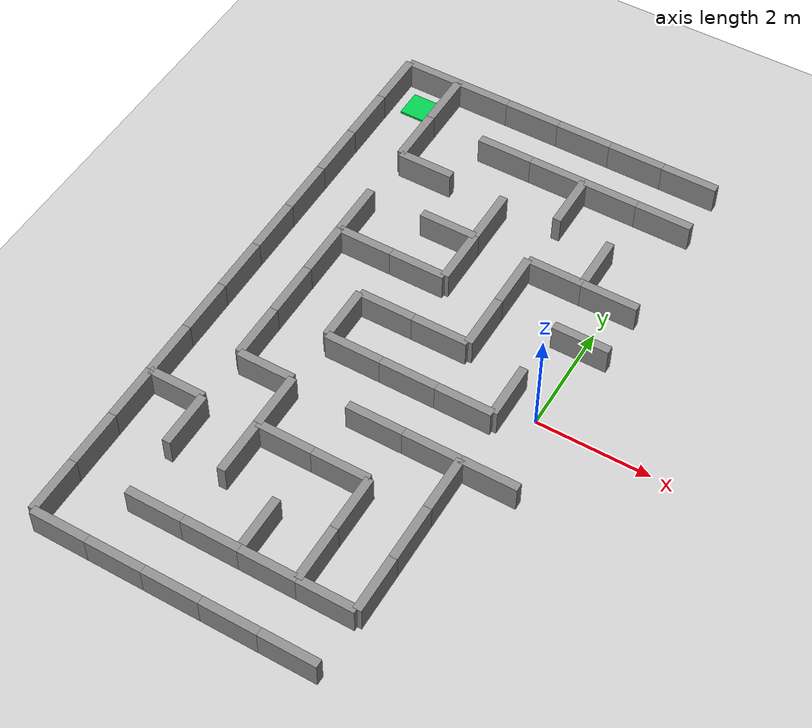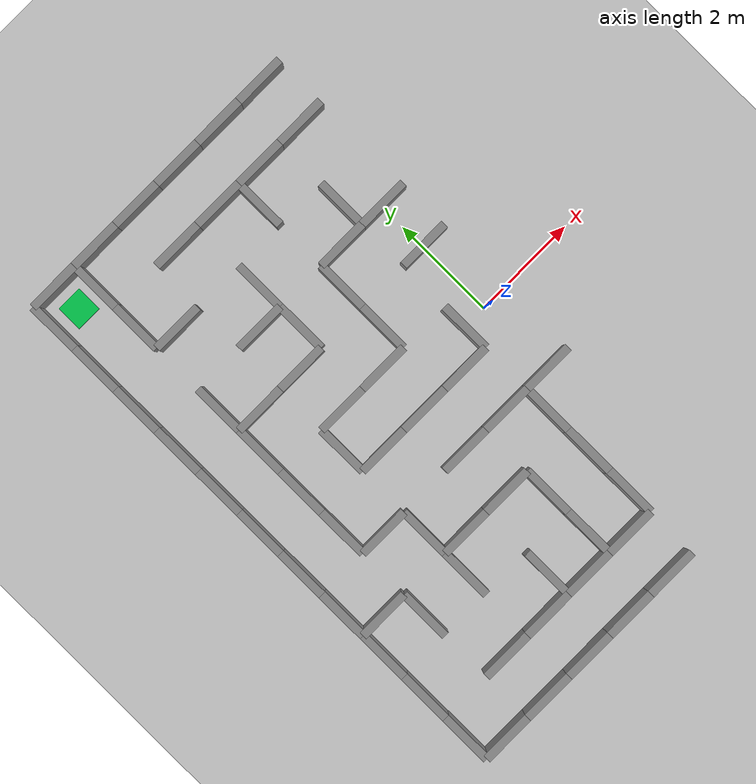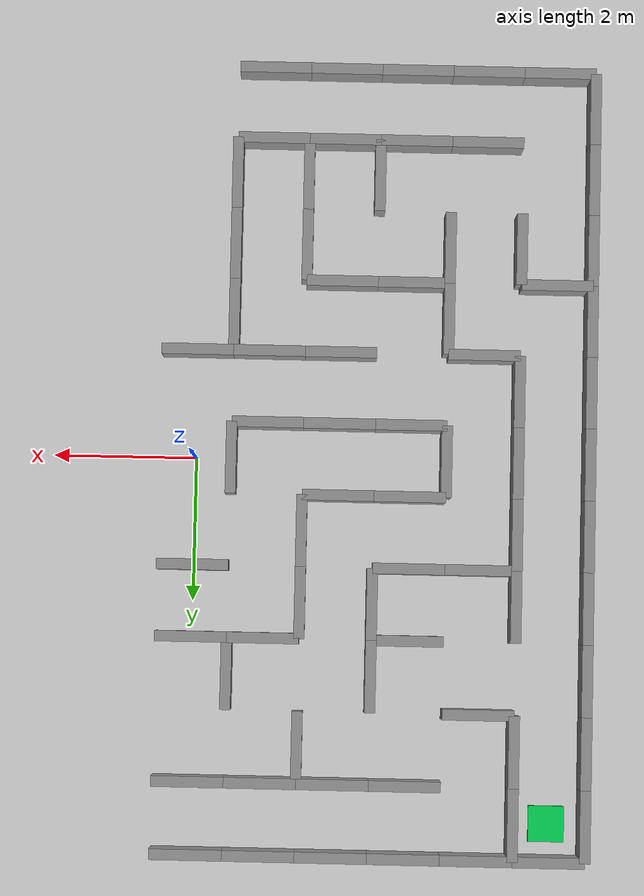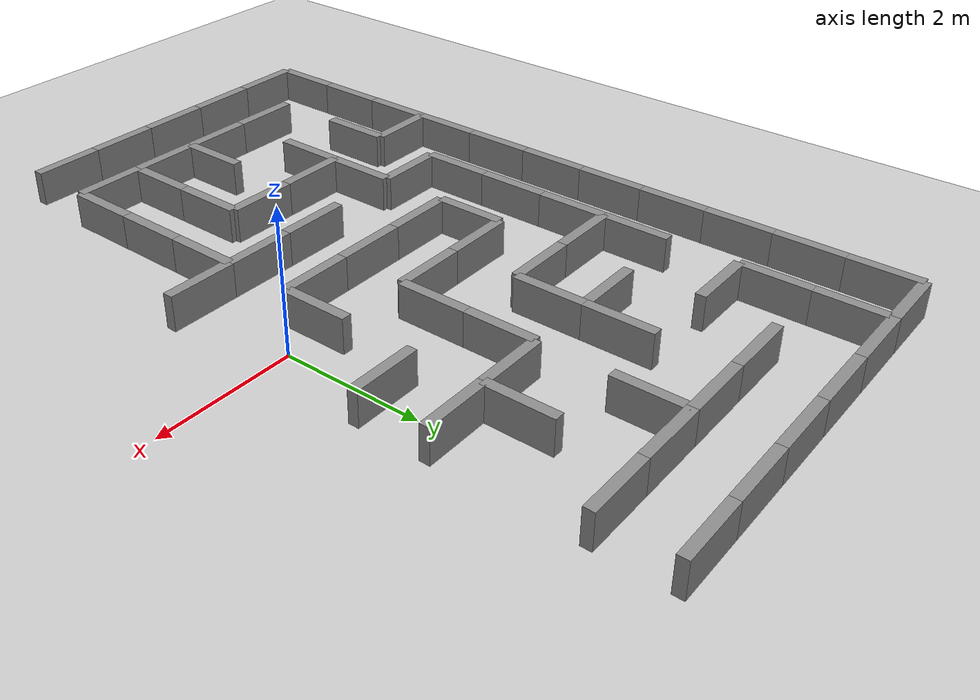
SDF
<sdf version="1.6">
 <world name="maze_world">
  <include><uri>model://ground_plane</uri></include>
  <include><uri>model://sun</uri></include>
  <model name="hw_0_0">
   <static>true</static>
   <pose>-5.0000 5.5000 0.2500 0 0 0.0000</pose>
   <link name="link">
    <collision name="col">
     <geometry><box><size>1.0000 0.15 0.5</size></box></geometry>
     <surface><friction><ode><mu>0.8</mu><mu2>0.8</mu2></ode></friction></surface>
    </collision>
    <visual name="vis">
     <geometry><box><size>1.0000 0.15 0.5</size></box></geometry>
     <material><ambient>0.55 0.55 0.55 1</ambient><diffuse>0.55 0.55 0.55 1</diffuse></material>
    </visual>
   </link>
  </model>
  <model name="hw_0_1">
   <static>true</static>
   <pose>-4.0000 5.5000 0.2500 0 0 0.0000</pose>
   <link name="link">
    <collision name="col">
     <geometry><box><size>1.0000 0.15 0.5</size></box></geometry>
     <surface><friction><ode><mu>0.8</mu><mu2>0.8</mu2></ode></friction></surface>
    </collision>
    <visual name="vis">
     <geometry><box><size>1.0000 0.15 0.5</size></box></geometry>
     <material><ambient>0.55 0.55 0.55 1</ambient><diffuse>0.55 0.55 0.55 1</diffuse></material>
    </visual>
   </link>
  </model>
  <model name="hw_0_2">
   <static>true</static>
   <pose>-3.0000 5.5000 0.2500 0 0 0.0000</pose>
   <link name="link">
    <collision name="col">
     <geometry><box><size>1.0000 0.15 0.5</size></box></geometry>
     <surface><friction><ode><mu>0.8</mu><mu2>0.8</mu2></ode></friction></surface>
    </collision>
    <visual name="vis">
     <geometry><box><size>1.0000 0.15 0.5</size></box></geometry>
     <material><ambient>0.55 0.55 0.55 1</ambient><diffuse>0.55 0.55 0.55 1</diffuse></material>
    </visual>
   </link>
  </model>
  <model name="hw_0_3">
   <static>true</static>
   <pose>-2.0000 5.5000 0.2500 0 0 0.0000</pose>
   <link name="link">
    <collision name="col">
     <geometry><box><size>1.0000 0.15 0.5</size></box></geometry>
     <surface><friction><ode><mu>0.8</mu><mu2>0.8</mu2></ode></friction></surface>
    </collision>
    <visual name="vis">
     <geometry><box><size>1.0000 0.15 0.5</size></box></geometry>
     <material><ambient>0.55 0.55 0.55 1</ambient><diffuse>0.55 0.55 0.55 1</diffuse></material>
    </visual>
   </link>
  </model>
  <model name="hw_0_4">
   <static>true</static>
   <pose>-1.0000 5.5000 0.2500 0 0 0.0000</pose>
   <link name="link">
    <collision name="col">
     <geometry><box><size>1.0000 0.15 0.5</size></box></geometry>
     <surface><friction><ode><mu>0.8</mu><mu2>0.8</mu2></ode></friction></surface>
    </collision>
    <visual name="vis">
     <geometry><box><size>1.0000 0.15 0.5</size></box></geometry>
     <material><ambient>0.55 0.55 0.55 1</ambient><diffuse>0.55 0.55 0.55 1</diffuse></material>
    </visual>
   </link>
  </model>
  <model name="hw_0_5">
   <static>true</static>
   <pose>0.0000 5.5000 0.2500 0 0 0.0000</pose>
   <link name="link">
    <collision name="col">
     <geometry><box><size>1.0000 0.15 0.5</size></box></geometry>
     <surface><friction><ode><mu>0.8</mu><mu2>0.8</mu2></ode></friction></surface>
    </collision>
    <visual name="vis">
     <geometry><box><size>1.0000 0.15 0.5</size></box></geometry>
     <material><ambient>0.55 0.55 0.55 1</ambient><diffuse>0.55 0.55 0.55 1</diffuse></material>
    </visual>
   </link>
  </model>
  <model name="hw_1_2">
   <static>true</static>
   <pose>-3.0000 4.5000 0.2500 0 0 0.0000</pose>
   <link name="link">
    <collision name="col">
     <geometry><box><size>1.0000 0.15 0.5</size></box></geometry>
     <surface><friction><ode><mu>0.8</mu><mu2>0.8</mu2></ode></friction></surface>
    </collision>
    <visual name="vis">
     <geometry><box><size>1.0000 0.15 0.5</size></box></geometry>
     <material><ambient>0.55 0.55 0.55 1</ambient><diffuse>0.55 0.55 0.55 1</diffuse></material>
    </visual>
   </link>
  </model>
  <model name="hw_1_3">
   <static>true</static>
   <pose>-2.0000 4.5000 0.2500 0 0 0.0000</pose>
   <link name="link">
    <collision name="col">
     <geometry><box><size>1.0000 0.15 0.5</size></box></geometry>
     <surface><friction><ode><mu>0.8</mu><mu2>0.8</mu2></ode></friction></surface>
    </collision>
    <visual name="vis">
     <geometry><box><size>1.0000 0.15 0.5</size></box></geometry>
     <material><ambient>0.55 0.55 0.55 1</ambient><diffuse>0.55 0.55 0.55 1</diffuse></material>
    </visual>
   </link>
  </model>
  <model name="hw_1_4">
   <static>true</static>
   <pose>-1.0000 4.5000 0.2500 0 0 0.0000</pose>
   <link name="link">
    <collision name="col">
     <geometry><box><size>1.0000 0.15 0.5</size></box></geometry>
     <surface><friction><ode><mu>0.8</mu><mu2>0.8</mu2></ode></friction></surface>
    </collision>
    <visual name="vis">
     <geometry><box><size>1.0000 0.15 0.5</size></box></geometry>
     <material><ambient>0.55 0.55 0.55 1</ambient><diffuse>0.55 0.55 0.55 1</diffuse></material>
    </visual>
   </link>
  </model>
  <model name="hw_1_5">
   <static>true</static>
   <pose>0.0000 4.5000 0.2500 0 0 0.0000</pose>
   <link name="link">
    <collision name="col">
     <geometry><box><size>1.0000 0.15 0.5</size></box></geometry>
     <surface><friction><ode><mu>0.8</mu><mu2>0.8</mu2></ode></friction></surface>
    </collision>
    <visual name="vis">
     <geometry><box><size>1.0000 0.15 0.5</size></box></geometry>
     <material><ambient>0.55 0.55 0.55 1</ambient><diffuse>0.55 0.55 0.55 1</diffuse></material>
    </visual>
   </link>
  </model>
  <model name="hw_2_1">
   <static>true</static>
   <pose>-4.0000 3.5000 0.2500 0 0 0.0000</pose>
   <link name="link">
    <collision name="col">
     <geometry><box><size>1.0000 0.15 0.5</size></box></geometry>
     <surface><friction><ode><mu>0.8</mu><mu2>0.8</mu2></ode></friction></surface>
    </collision>
    <visual name="vis">
     <geometry><box><size>1.0000 0.15 0.5</size></box></geometry>
     <material><ambient>0.55 0.55 0.55 1</ambient><diffuse>0.55 0.55 0.55 1</diffuse></material>
    </visual>
   </link>
  </model>
  <model name="hw_3_2">
   <static>true</static>
   <pose>-3.0000 2.5000 0.2500 0 0 0.0000</pose>
   <link name="link">
    <collision name="col">
     <geometry><box><size>1.0000 0.15 0.5</size></box></geometry>
     <surface><friction><ode><mu>0.8</mu><mu2>0.8</mu2></ode></friction></surface>
    </collision>
    <visual name="vis">
     <geometry><box><size>1.0000 0.15 0.5</size></box></geometry>
     <material><ambient>0.55 0.55 0.55 1</ambient><diffuse>0.55 0.55 0.55 1</diffuse></material>
    </visual>
   </link>
  </model>
  <model name="hw_3_4">
   <static>true</static>
   <pose>-1.0000 2.5000 0.2500 0 0 0.0000</pose>
   <link name="link">
    <collision name="col">
     <geometry><box><size>1.0000 0.15 0.5</size></box></geometry>
     <surface><friction><ode><mu>0.8</mu><mu2>0.8</mu2></ode></friction></surface>
    </collision>
    <visual name="vis">
     <geometry><box><size>1.0000 0.15 0.5</size></box></geometry>
     <material><ambient>0.55 0.55 0.55 1</ambient><diffuse>0.55 0.55 0.55 1</diffuse></material>
    </visual>
   </link>
  </model>
  <model name="hw_3_5">
   <static>true</static>
   <pose>0.0000 2.5000 0.2500 0 0 0.0000</pose>
   <link name="link">
    <collision name="col">
     <geometry><box><size>1.0000 0.15 0.5</size></box></geometry>
     <surface><friction><ode><mu>0.8</mu><mu2>0.8</mu2></ode></friction></surface>
    </collision>
    <visual name="vis">
     <geometry><box><size>1.0000 0.15 0.5</size></box></geometry>
     <material><ambient>0.55 0.55 0.55 1</ambient><diffuse>0.55 0.55 0.55 1</diffuse></material>
    </visual>
   </link>
  </model>
  <model name="hw_4_1">
   <static>true</static>
   <pose>-4.0000 1.5000 0.2500 0 0 0.0000</pose>
   <link name="link">
    <collision name="col">
     <geometry><box><size>1.0000 0.15 0.5</size></box></geometry>
     <surface><friction><ode><mu>0.8</mu><mu2>0.8</mu2></ode></friction></surface>
    </collision>
    <visual name="vis">
     <geometry><box><size>1.0000 0.15 0.5</size></box></geometry>
     <material><ambient>0.55 0.55 0.55 1</ambient><diffuse>0.55 0.55 0.55 1</diffuse></material>
    </visual>
   </link>
  </model>
  <model name="hw_4_2">
   <static>true</static>
   <pose>-3.0000 1.5000 0.2500 0 0 0.0000</pose>
   <link name="link">
    <collision name="col">
     <geometry><box><size>1.0000 0.15 0.5</size></box></geometry>
     <surface><friction><ode><mu>0.8</mu><mu2>0.8</mu2></ode></friction></surface>
    </collision>
    <visual name="vis">
     <geometry><box><size>1.0000 0.15 0.5</size></box></geometry>
     <material><ambient>0.55 0.55 0.55 1</ambient><diffuse>0.55 0.55 0.55 1</diffuse></material>
    </visual>
   </link>
  </model>
  <model name="hw_4_5">
   <static>true</static>
   <pose>0.0000 1.5000 0.2500 0 0 0.0000</pose>
   <link name="link">
    <collision name="col">
     <geometry><box><size>1.0000 0.15 0.5</size></box></geometry>
     <surface><friction><ode><mu>0.8</mu><mu2>0.8</mu2></ode></friction></surface>
    </collision>
    <visual name="vis">
     <geometry><box><size>1.0000 0.15 0.5</size></box></geometry>
     <material><ambient>0.55 0.55 0.55 1</ambient><diffuse>0.55 0.55 0.55 1</diffuse></material>
    </visual>
   </link>
  </model>
  <model name="hw_5_2">
   <static>true</static>
   <pose>-3.0000 0.5000 0.2500 0 0 0.0000</pose>
   <link name="link">
    <collision name="col">
     <geometry><box><size>1.0000 0.15 0.5</size></box></geometry>
     <surface><friction><ode><mu>0.8</mu><mu2>0.8</mu2></ode></friction></surface>
    </collision>
    <visual name="vis">
     <geometry><box><size>1.0000 0.15 0.5</size></box></geometry>
     <material><ambient>0.55 0.55 0.55 1</ambient><diffuse>0.55 0.55 0.55 1</diffuse></material>
    </visual>
   </link>
  </model>
  <model name="hw_5_3">
   <static>true</static>
   <pose>-2.0000 0.5000 0.2500 0 0 0.0000</pose>
   <link name="link">
    <collision name="col">
     <geometry><box><size>1.0000 0.15 0.5</size></box></geometry>
     <surface><friction><ode><mu>0.8</mu><mu2>0.8</mu2></ode></friction></surface>
    </collision>
    <visual name="vis">
     <geometry><box><size>1.0000 0.15 0.5</size></box></geometry>
     <material><ambient>0.55 0.55 0.55 1</ambient><diffuse>0.55 0.55 0.55 1</diffuse></material>
    </visual>
   </link>
  </model>
  <model name="hw_6_2">
   <static>true</static>
   <pose>-3.0000 -0.5000 0.2500 0 0 0.0000</pose>
   <link name="link">
    <collision name="col">
     <geometry><box><size>1.0000 0.15 0.5</size></box></geometry>
     <surface><friction><ode><mu>0.8</mu><mu2>0.8</mu2></ode></friction></surface>
    </collision>
    <visual name="vis">
     <geometry><box><size>1.0000 0.15 0.5</size></box></geometry>
     <material><ambient>0.55 0.55 0.55 1</ambient><diffuse>0.55 0.55 0.55 1</diffuse></material>
    </visual>
   </link>
  </model>
  <model name="hw_6_3">
   <static>true</static>
   <pose>-2.0000 -0.5000 0.2500 0 0 0.0000</pose>
   <link name="link">
    <collision name="col">
     <geometry><box><size>1.0000 0.15 0.5</size></box></geometry>
     <surface><friction><ode><mu>0.8</mu><mu2>0.8</mu2></ode></friction></surface>
    </collision>
    <visual name="vis">
     <geometry><box><size>1.0000 0.15 0.5</size></box></geometry>
     <material><ambient>0.55 0.55 0.55 1</ambient><diffuse>0.55 0.55 0.55 1</diffuse></material>
    </visual>
   </link>
  </model>
  <model name="hw_6_4">
   <static>true</static>
   <pose>-1.0000 -0.5000 0.2500 0 0 0.0000</pose>
   <link name="link">
    <collision name="col">
     <geometry><box><size>1.0000 0.15 0.5</size></box></geometry>
     <surface><friction><ode><mu>0.8</mu><mu2>0.8</mu2></ode></friction></surface>
    </collision>
    <visual name="vis">
     <geometry><box><size>1.0000 0.15 0.5</size></box></geometry>
     <material><ambient>0.55 0.55 0.55 1</ambient><diffuse>0.55 0.55 0.55 1</diffuse></material>
    </visual>
   </link>
  </model>
  <model name="hw_7_1">
   <static>true</static>
   <pose>-4.0000 -1.5000 0.2500 0 0 0.0000</pose>
   <link name="link">
    <collision name="col">
     <geometry><box><size>1.0000 0.15 0.5</size></box></geometry>
     <surface><friction><ode><mu>0.8</mu><mu2>0.8</mu2></ode></friction></surface>
    </collision>
    <visual name="vis">
     <geometry><box><size>1.0000 0.15 0.5</size></box></geometry>
     <material><ambient>0.55 0.55 0.55 1</ambient><diffuse>0.55 0.55 0.55 1</diffuse></material>
    </visual>
   </link>
  </model>
  <model name="hw_7_3">
   <static>true</static>
   <pose>-2.0000 -1.5000 0.2500 0 0 0.0000</pose>
   <link name="link">
    <collision name="col">
     <geometry><box><size>1.0000 0.15 0.5</size></box></geometry>
     <surface><friction><ode><mu>0.8</mu><mu2>0.8</mu2></ode></friction></surface>
    </collision>
    <visual name="vis">
     <geometry><box><size>1.0000 0.15 0.5</size></box></geometry>
     <material><ambient>0.55 0.55 0.55 1</ambient><diffuse>0.55 0.55 0.55 1</diffuse></material>
    </visual>
   </link>
  </model>
  <model name="hw_7_4">
   <static>true</static>
   <pose>-1.0000 -1.5000 0.2500 0 0 0.0000</pose>
   <link name="link">
    <collision name="col">
     <geometry><box><size>1.0000 0.15 0.5</size></box></geometry>
     <surface><friction><ode><mu>0.8</mu><mu2>0.8</mu2></ode></friction></surface>
    </collision>
    <visual name="vis">
     <geometry><box><size>1.0000 0.15 0.5</size></box></geometry>
     <material><ambient>0.55 0.55 0.55 1</ambient><diffuse>0.55 0.55 0.55 1</diffuse></material>
    </visual>
   </link>
  </model>
  <model name="hw_7_5">
   <static>true</static>
   <pose>0.0000 -1.5000 0.2500 0 0 0.0000</pose>
   <link name="link">
    <collision name="col">
     <geometry><box><size>1.0000 0.15 0.5</size></box></geometry>
     <surface><friction><ode><mu>0.8</mu><mu2>0.8</mu2></ode></friction></surface>
    </collision>
    <visual name="vis">
     <geometry><box><size>1.0000 0.15 0.5</size></box></geometry>
     <material><ambient>0.55 0.55 0.55 1</ambient><diffuse>0.55 0.55 0.55 1</diffuse></material>
    </visual>
   </link>
  </model>
  <model name="hw_8_0">
   <static>true</static>
   <pose>-5.0000 -2.5000 0.2500 0 0 0.0000</pose>
   <link name="link">
    <collision name="col">
     <geometry><box><size>1.0000 0.15 0.5</size></box></geometry>
     <surface><friction><ode><mu>0.8</mu><mu2>0.8</mu2></ode></friction></surface>
    </collision>
    <visual name="vis">
     <geometry><box><size>1.0000 0.15 0.5</size></box></geometry>
     <material><ambient>0.55 0.55 0.55 1</ambient><diffuse>0.55 0.55 0.55 1</diffuse></material>
    </visual>
   </link>
  </model>
  <model name="hw_8_2">
   <static>true</static>
   <pose>-3.0000 -2.5000 0.2500 0 0 0.0000</pose>
   <link name="link">
    <collision name="col">
     <geometry><box><size>1.0000 0.15 0.5</size></box></geometry>
     <surface><friction><ode><mu>0.8</mu><mu2>0.8</mu2></ode></friction></surface>
    </collision>
    <visual name="vis">
     <geometry><box><size>1.0000 0.15 0.5</size></box></geometry>
     <material><ambient>0.55 0.55 0.55 1</ambient><diffuse>0.55 0.55 0.55 1</diffuse></material>
    </visual>
   </link>
  </model>
  <model name="hw_8_3">
   <static>true</static>
   <pose>-2.0000 -2.5000 0.2500 0 0 0.0000</pose>
   <link name="link">
    <collision name="col">
     <geometry><box><size>1.0000 0.15 0.5</size></box></geometry>
     <surface><friction><ode><mu>0.8</mu><mu2>0.8</mu2></ode></friction></surface>
    </collision>
    <visual name="vis">
     <geometry><box><size>1.0000 0.15 0.5</size></box></geometry>
     <material><ambient>0.55 0.55 0.55 1</ambient><diffuse>0.55 0.55 0.55 1</diffuse></material>
    </visual>
   </link>
  </model>
  <model name="hw_10_1">
   <static>true</static>
   <pose>-4.0000 -4.5000 0.2500 0 0 0.0000</pose>
   <link name="link">
    <collision name="col">
     <geometry><box><size>1.0000 0.15 0.5</size></box></geometry>
     <surface><friction><ode><mu>0.8</mu><mu2>0.8</mu2></ode></friction></surface>
    </collision>
    <visual name="vis">
     <geometry><box><size>1.0000 0.15 0.5</size></box></geometry>
     <material><ambient>0.55 0.55 0.55 1</ambient><diffuse>0.55 0.55 0.55 1</diffuse></material>
    </visual>
   </link>
  </model>
  <model name="hw_10_2">
   <static>true</static>
   <pose>-3.0000 -4.5000 0.2500 0 0 0.0000</pose>
   <link name="link">
    <collision name="col">
     <geometry><box><size>1.0000 0.15 0.5</size></box></geometry>
     <surface><friction><ode><mu>0.8</mu><mu2>0.8</mu2></ode></friction></surface>
    </collision>
    <visual name="vis">
     <geometry><box><size>1.0000 0.15 0.5</size></box></geometry>
     <material><ambient>0.55 0.55 0.55 1</ambient><diffuse>0.55 0.55 0.55 1</diffuse></material>
    </visual>
   </link>
  </model>
  <model name="hw_10_3">
   <static>true</static>
   <pose>-2.0000 -4.5000 0.2500 0 0 0.0000</pose>
   <link name="link">
    <collision name="col">
     <geometry><box><size>1.0000 0.15 0.5</size></box></geometry>
     <surface><friction><ode><mu>0.8</mu><mu2>0.8</mu2></ode></friction></surface>
    </collision>
    <visual name="vis">
     <geometry><box><size>1.0000 0.15 0.5</size></box></geometry>
     <material><ambient>0.55 0.55 0.55 1</ambient><diffuse>0.55 0.55 0.55 1</diffuse></material>
    </visual>
   </link>
  </model>
  <model name="hw_10_4">
   <static>true</static>
   <pose>-1.0000 -4.5000 0.2500 0 0 0.0000</pose>
   <link name="link">
    <collision name="col">
     <geometry><box><size>1.0000 0.15 0.5</size></box></geometry>
     <surface><friction><ode><mu>0.8</mu><mu2>0.8</mu2></ode></friction></surface>
    </collision>
    <visual name="vis">
     <geometry><box><size>1.0000 0.15 0.5</size></box></geometry>
     <material><ambient>0.55 0.55 0.55 1</ambient><diffuse>0.55 0.55 0.55 1</diffuse></material>
    </visual>
   </link>
  </model>
  <model name="hw_11_0">
   <static>true</static>
   <pose>-5.0000 -5.5000 0.2500 0 0 0.0000</pose>
   <link name="link">
    <collision name="col">
     <geometry><box><size>1.0000 0.15 0.5</size></box></geometry>
     <surface><friction><ode><mu>0.8</mu><mu2>0.8</mu2></ode></friction></surface>
    </collision>
    <visual name="vis">
     <geometry><box><size>1.0000 0.15 0.5</size></box></geometry>
     <material><ambient>0.55 0.55 0.55 1</ambient><diffuse>0.55 0.55 0.55 1</diffuse></material>
    </visual>
   </link>
  </model>
  <model name="hw_11_1">
   <static>true</static>
   <pose>-4.0000 -5.5000 0.2500 0 0 0.0000</pose>
   <link name="link">
    <collision name="col">
     <geometry><box><size>1.0000 0.15 0.5</size></box></geometry>
     <surface><friction><ode><mu>0.8</mu><mu2>0.8</mu2></ode></friction></surface>
    </collision>
    <visual name="vis">
     <geometry><box><size>1.0000 0.15 0.5</size></box></geometry>
     <material><ambient>0.55 0.55 0.55 1</ambient><diffuse>0.55 0.55 0.55 1</diffuse></material>
    </visual>
   </link>
  </model>
  <model name="hw_11_2">
   <static>true</static>
   <pose>-3.0000 -5.5000 0.2500 0 0 0.0000</pose>
   <link name="link">
    <collision name="col">
     <geometry><box><size>1.0000 0.15 0.5</size></box></geometry>
     <surface><friction><ode><mu>0.8</mu><mu2>0.8</mu2></ode></friction></surface>
    </collision>
    <visual name="vis">
     <geometry><box><size>1.0000 0.15 0.5</size></box></geometry>
     <material><ambient>0.55 0.55 0.55 1</ambient><diffuse>0.55 0.55 0.55 1</diffuse></material>
    </visual>
   </link>
  </model>
  <model name="hw_11_3">
   <static>true</static>
   <pose>-2.0000 -5.5000 0.2500 0 0 0.0000</pose>
   <link name="link">
    <collision name="col">
     <geometry><box><size>1.0000 0.15 0.5</size></box></geometry>
     <surface><friction><ode><mu>0.8</mu><mu2>0.8</mu2></ode></friction></surface>
    </collision>
    <visual name="vis">
     <geometry><box><size>1.0000 0.15 0.5</size></box></geometry>
     <material><ambient>0.55 0.55 0.55 1</ambient><diffuse>0.55 0.55 0.55 1</diffuse></material>
    </visual>
   </link>
  </model>
  <model name="hw_11_4">
   <static>true</static>
   <pose>-1.0000 -5.5000 0.2500 0 0 0.0000</pose>
   <link name="link">
    <collision name="col">
     <geometry><box><size>1.0000 0.15 0.5</size></box></geometry>
     <surface><friction><ode><mu>0.8</mu><mu2>0.8</mu2></ode></friction></surface>
    </collision>
    <visual name="vis">
     <geometry><box><size>1.0000 0.15 0.5</size></box></geometry>
     <material><ambient>0.55 0.55 0.55 1</ambient><diffuse>0.55 0.55 0.55 1</diffuse></material>
    </visual>
   </link>
  </model>
  <model name="vw_0_0">
   <static>true</static>
   <pose>-5.5000 5.0000 0.2500 0 0 1.5708</pose>
   <link name="link">
    <collision name="col">
     <geometry><box><size>1.0000 0.15 0.5</size></box></geometry>
     <surface><friction><ode><mu>0.8</mu><mu2>0.8</mu2></ode></friction></surface>
    </collision>
    <visual name="vis">
     <geometry><box><size>1.0000 0.15 0.5</size></box></geometry>
     <material><ambient>0.55 0.55 0.55 1</ambient><diffuse>0.55 0.55 0.55 1</diffuse></material>
    </visual>
   </link>
  </model>
  <model name="vw_0_1">
   <static>true</static>
   <pose>-5.5000 4.0000 0.2500 0 0 1.5708</pose>
   <link name="link">
    <collision name="col">
     <geometry><box><size>1.0000 0.15 0.5</size></box></geometry>
     <surface><friction><ode><mu>0.8</mu><mu2>0.8</mu2></ode></friction></surface>
    </collision>
    <visual name="vis">
     <geometry><box><size>1.0000 0.15 0.5</size></box></geometry>
     <material><ambient>0.55 0.55 0.55 1</ambient><diffuse>0.55 0.55 0.55 1</diffuse></material>
    </visual>
   </link>
  </model>
  <model name="vw_0_2">
   <static>true</static>
   <pose>-5.5000 3.0000 0.2500 0 0 1.5708</pose>
   <link name="link">
    <collision name="col">
     <geometry><box><size>1.0000 0.15 0.5</size></box></geometry>
     <surface><friction><ode><mu>0.8</mu><mu2>0.8</mu2></ode></friction></surface>
    </collision>
    <visual name="vis">
     <geometry><box><size>1.0000 0.15 0.5</size></box></geometry>
     <material><ambient>0.55 0.55 0.55 1</ambient><diffuse>0.55 0.55 0.55 1</diffuse></material>
    </visual>
   </link>
  </model>
  <model name="vw_0_3">
   <static>true</static>
   <pose>-5.5000 2.0000 0.2500 0 0 1.5708</pose>
   <link name="link">
    <collision name="col">
     <geometry><box><size>1.0000 0.15 0.5</size></box></geometry>
     <surface><friction><ode><mu>0.8</mu><mu2>0.8</mu2></ode></friction></surface>
    </collision>
    <visual name="vis">
     <geometry><box><size>1.0000 0.15 0.5</size></box></geometry>
     <material><ambient>0.55 0.55 0.55 1</ambient><diffuse>0.55 0.55 0.55 1</diffuse></material>
    </visual>
   </link>
  </model>
  <model name="vw_0_4">
   <static>true</static>
   <pose>-5.5000 1.0000 0.2500 0 0 1.5708</pose>
   <link name="link">
    <collision name="col">
     <geometry><box><size>1.0000 0.15 0.5</size></box></geometry>
     <surface><friction><ode><mu>0.8</mu><mu2>0.8</mu2></ode></friction></surface>
    </collision>
    <visual name="vis">
     <geometry><box><size>1.0000 0.15 0.5</size></box></geometry>
     <material><ambient>0.55 0.55 0.55 1</ambient><diffuse>0.55 0.55 0.55 1</diffuse></material>
    </visual>
   </link>
  </model>
  <model name="vw_0_5">
   <static>true</static>
   <pose>-5.5000 0.0000 0.2500 0 0 1.5708</pose>
   <link name="link">
    <collision name="col">
     <geometry><box><size>1.0000 0.15 0.5</size></box></geometry>
     <surface><friction><ode><mu>0.8</mu><mu2>0.8</mu2></ode></friction></surface>
    </collision>
    <visual name="vis">
     <geometry><box><size>1.0000 0.15 0.5</size></box></geometry>
     <material><ambient>0.55 0.55 0.55 1</ambient><diffuse>0.55 0.55 0.55 1</diffuse></material>
    </visual>
   </link>
  </model>
  <model name="vw_0_6">
   <static>true</static>
   <pose>-5.5000 -1.0000 0.2500 0 0 1.5708</pose>
   <link name="link">
    <collision name="col">
     <geometry><box><size>1.0000 0.15 0.5</size></box></geometry>
     <surface><friction><ode><mu>0.8</mu><mu2>0.8</mu2></ode></friction></surface>
    </collision>
    <visual name="vis">
     <geometry><box><size>1.0000 0.15 0.5</size></box></geometry>
     <material><ambient>0.55 0.55 0.55 1</ambient><diffuse>0.55 0.55 0.55 1</diffuse></material>
    </visual>
   </link>
  </model>
  <model name="vw_0_7">
   <static>true</static>
   <pose>-5.5000 -2.0000 0.2500 0 0 1.5708</pose>
   <link name="link">
    <collision name="col">
     <geometry><box><size>1.0000 0.15 0.5</size></box></geometry>
     <surface><friction><ode><mu>0.8</mu><mu2>0.8</mu2></ode></friction></surface>
    </collision>
    <visual name="vis">
     <geometry><box><size>1.0000 0.15 0.5</size></box></geometry>
     <material><ambient>0.55 0.55 0.55 1</ambient><diffuse>0.55 0.55 0.55 1</diffuse></material>
    </visual>
   </link>
  </model>
  <model name="vw_0_8">
   <static>true</static>
   <pose>-5.5000 -3.0000 0.2500 0 0 1.5708</pose>
   <link name="link">
    <collision name="col">
     <geometry><box><size>1.0000 0.15 0.5</size></box></geometry>
     <surface><friction><ode><mu>0.8</mu><mu2>0.8</mu2></ode></friction></surface>
    </collision>
    <visual name="vis">
     <geometry><box><size>1.0000 0.15 0.5</size></box></geometry>
     <material><ambient>0.55 0.55 0.55 1</ambient><diffuse>0.55 0.55 0.55 1</diffuse></material>
    </visual>
   </link>
  </model>
  <model name="vw_0_9">
   <static>true</static>
   <pose>-5.5000 -4.0000 0.2500 0 0 1.5708</pose>
   <link name="link">
    <collision name="col">
     <geometry><box><size>1.0000 0.15 0.5</size></box></geometry>
     <surface><friction><ode><mu>0.8</mu><mu2>0.8</mu2></ode></friction></surface>
    </collision>
    <visual name="vis">
     <geometry><box><size>1.0000 0.15 0.5</size></box></geometry>
     <material><ambient>0.55 0.55 0.55 1</ambient><diffuse>0.55 0.55 0.55 1</diffuse></material>
    </visual>
   </link>
  </model>
  <model name="vw_0_10">
   <static>true</static>
   <pose>-5.5000 -5.0000 0.2500 0 0 1.5708</pose>
   <link name="link">
    <collision name="col">
     <geometry><box><size>1.0000 0.15 0.5</size></box></geometry>
     <surface><friction><ode><mu>0.8</mu><mu2>0.8</mu2></ode></friction></surface>
    </collision>
    <visual name="vis">
     <geometry><box><size>1.0000 0.15 0.5</size></box></geometry>
     <material><ambient>0.55 0.55 0.55 1</ambient><diffuse>0.55 0.55 0.55 1</diffuse></material>
    </visual>
   </link>
  </model>
  <model name="vw_1_0">
   <static>true</static>
   <pose>-4.5000 5.0000 0.2500 0 0 1.5708</pose>
   <link name="link">
    <collision name="col">
     <geometry><box><size>1.0000 0.15 0.5</size></box></geometry>
     <surface><friction><ode><mu>0.8</mu><mu2>0.8</mu2></ode></friction></surface>
    </collision>
    <visual name="vis">
     <geometry><box><size>1.0000 0.15 0.5</size></box></geometry>
     <material><ambient>0.55 0.55 0.55 1</ambient><diffuse>0.55 0.55 0.55 1</diffuse></material>
    </visual>
   </link>
  </model>
  <model name="vw_1_1">
   <static>true</static>
   <pose>-4.5000 4.0000 0.2500 0 0 1.5708</pose>
   <link name="link">
    <collision name="col">
     <geometry><box><size>1.0000 0.15 0.5</size></box></geometry>
     <surface><friction><ode><mu>0.8</mu><mu2>0.8</mu2></ode></friction></surface>
    </collision>
    <visual name="vis">
     <geometry><box><size>1.0000 0.15 0.5</size></box></geometry>
     <material><ambient>0.55 0.55 0.55 1</ambient><diffuse>0.55 0.55 0.55 1</diffuse></material>
    </visual>
   </link>
  </model>
  <model name="vw_1_3">
   <static>true</static>
   <pose>-4.5000 2.0000 0.2500 0 0 1.5708</pose>
   <link name="link">
    <collision name="col">
     <geometry><box><size>1.0000 0.15 0.5</size></box></geometry>
     <surface><friction><ode><mu>0.8</mu><mu2>0.8</mu2></ode></friction></surface>
    </collision>
    <visual name="vis">
     <geometry><box><size>1.0000 0.15 0.5</size></box></geometry>
     <material><ambient>0.55 0.55 0.55 1</ambient><diffuse>0.55 0.55 0.55 1</diffuse></material>
    </visual>
   </link>
  </model>
  <model name="vw_1_4">
   <static>true</static>
   <pose>-4.5000 1.0000 0.2500 0 0 1.5708</pose>
   <link name="link">
    <collision name="col">
     <geometry><box><size>1.0000 0.15 0.5</size></box></geometry>
     <surface><friction><ode><mu>0.8</mu><mu2>0.8</mu2></ode></friction></surface>
    </collision>
    <visual name="vis">
     <geometry><box><size>1.0000 0.15 0.5</size></box></geometry>
     <material><ambient>0.55 0.55 0.55 1</ambient><diffuse>0.55 0.55 0.55 1</diffuse></material>
    </visual>
   </link>
  </model>
  <model name="vw_1_5">
   <static>true</static>
   <pose>-4.5000 0.0000 0.2500 0 0 1.5708</pose>
   <link name="link">
    <collision name="col">
     <geometry><box><size>1.0000 0.15 0.5</size></box></geometry>
     <surface><friction><ode><mu>0.8</mu><mu2>0.8</mu2></ode></friction></surface>
    </collision>
    <visual name="vis">
     <geometry><box><size>1.0000 0.15 0.5</size></box></geometry>
     <material><ambient>0.55 0.55 0.55 1</ambient><diffuse>0.55 0.55 0.55 1</diffuse></material>
    </visual>
   </link>
  </model>
  <model name="vw_1_6">
   <static>true</static>
   <pose>-4.5000 -1.0000 0.2500 0 0 1.5708</pose>
   <link name="link">
    <collision name="col">
     <geometry><box><size>1.0000 0.15 0.5</size></box></geometry>
     <surface><friction><ode><mu>0.8</mu><mu2>0.8</mu2></ode></friction></surface>
    </collision>
    <visual name="vis">
     <geometry><box><size>1.0000 0.15 0.5</size></box></geometry>
     <material><ambient>0.55 0.55 0.55 1</ambient><diffuse>0.55 0.55 0.55 1</diffuse></material>
    </visual>
   </link>
  </model>
  <model name="vw_1_8">
   <static>true</static>
   <pose>-4.5000 -3.0000 0.2500 0 0 1.5708</pose>
   <link name="link">
    <collision name="col">
     <geometry><box><size>1.0000 0.15 0.5</size></box></geometry>
     <surface><friction><ode><mu>0.8</mu><mu2>0.8</mu2></ode></friction></surface>
    </collision>
    <visual name="vis">
     <geometry><box><size>1.0000 0.15 0.5</size></box></geometry>
     <material><ambient>0.55 0.55 0.55 1</ambient><diffuse>0.55 0.55 0.55 1</diffuse></material>
    </visual>
   </link>
  </model>
  <model name="vw_2_5">
   <static>true</static>
   <pose>-3.5000 0.0000 0.2500 0 0 1.5708</pose>
   <link name="link">
    <collision name="col">
     <geometry><box><size>1.0000 0.15 0.5</size></box></geometry>
     <surface><friction><ode><mu>0.8</mu><mu2>0.8</mu2></ode></friction></surface>
    </collision>
    <visual name="vis">
     <geometry><box><size>1.0000 0.15 0.5</size></box></geometry>
     <material><ambient>0.55 0.55 0.55 1</ambient><diffuse>0.55 0.55 0.55 1</diffuse></material>
    </visual>
   </link>
  </model>
  <model name="vw_2_7">
   <static>true</static>
   <pose>-3.5000 -2.0000 0.2500 0 0 1.5708</pose>
   <link name="link">
    <collision name="col">
     <geometry><box><size>1.0000 0.15 0.5</size></box></geometry>
     <surface><friction><ode><mu>0.8</mu><mu2>0.8</mu2></ode></friction></surface>
    </collision>
    <visual name="vis">
     <geometry><box><size>1.0000 0.15 0.5</size></box></geometry>
     <material><ambient>0.55 0.55 0.55 1</ambient><diffuse>0.55 0.55 0.55 1</diffuse></material>
    </visual>
   </link>
  </model>
  <model name="vw_2_8">
   <static>true</static>
   <pose>-3.5000 -3.0000 0.2500 0 0 1.5708</pose>
   <link name="link">
    <collision name="col">
     <geometry><box><size>1.0000 0.15 0.5</size></box></geometry>
     <surface><friction><ode><mu>0.8</mu><mu2>0.8</mu2></ode></friction></surface>
    </collision>
    <visual name="vis">
     <geometry><box><size>1.0000 0.15 0.5</size></box></geometry>
     <material><ambient>0.55 0.55 0.55 1</ambient><diffuse>0.55 0.55 0.55 1</diffuse></material>
    </visual>
   </link>
  </model>
  <model name="vw_3_2">
   <static>true</static>
   <pose>-2.5000 3.0000 0.2500 0 0 1.5708</pose>
   <link name="link">
    <collision name="col">
     <geometry><box><size>1.0000 0.15 0.5</size></box></geometry>
     <surface><friction><ode><mu>0.8</mu><mu2>0.8</mu2></ode></friction></surface>
    </collision>
    <visual name="vis">
     <geometry><box><size>1.0000 0.15 0.5</size></box></geometry>
     <material><ambient>0.55 0.55 0.55 1</ambient><diffuse>0.55 0.55 0.55 1</diffuse></material>
    </visual>
   </link>
  </model>
  <model name="vw_3_3">
   <static>true</static>
   <pose>-2.5000 2.0000 0.2500 0 0 1.5708</pose>
   <link name="link">
    <collision name="col">
     <geometry><box><size>1.0000 0.15 0.5</size></box></geometry>
     <surface><friction><ode><mu>0.8</mu><mu2>0.8</mu2></ode></friction></surface>
    </collision>
    <visual name="vis">
     <geometry><box><size>1.0000 0.15 0.5</size></box></geometry>
     <material><ambient>0.55 0.55 0.55 1</ambient><diffuse>0.55 0.55 0.55 1</diffuse></material>
    </visual>
   </link>
  </model>
  <model name="vw_3_9">
   <static>true</static>
   <pose>-2.5000 -4.0000 0.2500 0 0 1.5708</pose>
   <link name="link">
    <collision name="col">
     <geometry><box><size>1.0000 0.15 0.5</size></box></geometry>
     <surface><friction><ode><mu>0.8</mu><mu2>0.8</mu2></ode></friction></surface>
    </collision>
    <visual name="vis">
     <geometry><box><size>1.0000 0.15 0.5</size></box></geometry>
     <material><ambient>0.55 0.55 0.55 1</ambient><diffuse>0.55 0.55 0.55 1</diffuse></material>
    </visual>
   </link>
  </model>
  <model name="vw_4_1">
   <static>true</static>
   <pose>-1.5000 4.0000 0.2500 0 0 1.5708</pose>
   <link name="link">
    <collision name="col">
     <geometry><box><size>1.0000 0.15 0.5</size></box></geometry>
     <surface><friction><ode><mu>0.8</mu><mu2>0.8</mu2></ode></friction></surface>
    </collision>
    <visual name="vis">
     <geometry><box><size>1.0000 0.15 0.5</size></box></geometry>
     <material><ambient>0.55 0.55 0.55 1</ambient><diffuse>0.55 0.55 0.55 1</diffuse></material>
    </visual>
   </link>
  </model>
  <model name="vw_4_3">
   <static>true</static>
   <pose>-1.5000 2.0000 0.2500 0 0 1.5708</pose>
   <link name="link">
    <collision name="col">
     <geometry><box><size>1.0000 0.15 0.5</size></box></geometry>
     <surface><friction><ode><mu>0.8</mu><mu2>0.8</mu2></ode></friction></surface>
    </collision>
    <visual name="vis">
     <geometry><box><size>1.0000 0.15 0.5</size></box></geometry>
     <material><ambient>0.55 0.55 0.55 1</ambient><diffuse>0.55 0.55 0.55 1</diffuse></material>
    </visual>
   </link>
  </model>
  <model name="vw_4_4">
   <static>true</static>
   <pose>-1.5000 1.0000 0.2500 0 0 1.5708</pose>
   <link name="link">
    <collision name="col">
     <geometry><box><size>1.0000 0.15 0.5</size></box></geometry>
     <surface><friction><ode><mu>0.8</mu><mu2>0.8</mu2></ode></friction></surface>
    </collision>
    <visual name="vis">
     <geometry><box><size>1.0000 0.15 0.5</size></box></geometry>
     <material><ambient>0.55 0.55 0.55 1</ambient><diffuse>0.55 0.55 0.55 1</diffuse></material>
    </visual>
   </link>
  </model>
  <model name="vw_4_8">
   <static>true</static>
   <pose>-1.5000 -3.0000 0.2500 0 0 1.5708</pose>
   <link name="link">
    <collision name="col">
     <geometry><box><size>1.0000 0.15 0.5</size></box></geometry>
     <surface><friction><ode><mu>0.8</mu><mu2>0.8</mu2></ode></friction></surface>
    </collision>
    <visual name="vis">
     <geometry><box><size>1.0000 0.15 0.5</size></box></geometry>
     <material><ambient>0.55 0.55 0.55 1</ambient><diffuse>0.55 0.55 0.55 1</diffuse></material>
    </visual>
   </link>
  </model>
  <model name="vw_4_9">
   <static>true</static>
   <pose>-1.5000 -4.0000 0.2500 0 0 1.5708</pose>
   <link name="link">
    <collision name="col">
     <geometry><box><size>1.0000 0.15 0.5</size></box></geometry>
     <surface><friction><ode><mu>0.8</mu><mu2>0.8</mu2></ode></friction></surface>
    </collision>
    <visual name="vis">
     <geometry><box><size>1.0000 0.15 0.5</size></box></geometry>
     <material><ambient>0.55 0.55 0.55 1</ambient><diffuse>0.55 0.55 0.55 1</diffuse></material>
    </visual>
   </link>
  </model>
  <model name="vw_5_2">
   <static>true</static>
   <pose>-0.5000 3.0000 0.2500 0 0 1.5708</pose>
   <link name="link">
    <collision name="col">
     <geometry><box><size>1.0000 0.15 0.5</size></box></geometry>
     <surface><friction><ode><mu>0.8</mu><mu2>0.8</mu2></ode></friction></surface>
    </collision>
    <visual name="vis">
     <geometry><box><size>1.0000 0.15 0.5</size></box></geometry>
     <material><ambient>0.55 0.55 0.55 1</ambient><diffuse>0.55 0.55 0.55 1</diffuse></material>
    </visual>
   </link>
  </model>
  <model name="vw_5_5">
   <static>true</static>
   <pose>-0.5000 0.0000 0.2500 0 0 1.5708</pose>
   <link name="link">
    <collision name="col">
     <geometry><box><size>1.0000 0.15 0.5</size></box></geometry>
     <surface><friction><ode><mu>0.8</mu><mu2>0.8</mu2></ode></friction></surface>
    </collision>
    <visual name="vis">
     <geometry><box><size>1.0000 0.15 0.5</size></box></geometry>
     <material><ambient>0.55 0.55 0.55 1</ambient><diffuse>0.55 0.55 0.55 1</diffuse></material>
    </visual>
   </link>
  </model>
  <model name="vw_5_7">
   <static>true</static>
   <pose>-0.5000 -2.0000 0.2500 0 0 1.5708</pose>
   <link name="link">
    <collision name="col">
     <geometry><box><size>1.0000 0.15 0.5</size></box></geometry>
     <surface><friction><ode><mu>0.8</mu><mu2>0.8</mu2></ode></friction></surface>
    </collision>
    <visual name="vis">
     <geometry><box><size>1.0000 0.15 0.5</size></box></geometry>
     <material><ambient>0.55 0.55 0.55 1</ambient><diffuse>0.55 0.55 0.55 1</diffuse></material>
    </visual>
   </link>
  </model>
  <model name="vw_5_8">
   <static>true</static>
   <pose>-0.5000 -3.0000 0.2500 0 0 1.5708</pose>
   <link name="link">
    <collision name="col">
     <geometry><box><size>1.0000 0.15 0.5</size></box></geometry>
     <surface><friction><ode><mu>0.8</mu><mu2>0.8</mu2></ode></friction></surface>
    </collision>
    <visual name="vis">
     <geometry><box><size>1.0000 0.15 0.5</size></box></geometry>
     <material><ambient>0.55 0.55 0.55 1</ambient><diffuse>0.55 0.55 0.55 1</diffuse></material>
    </visual>
   </link>
  </model>
  <model name="vw_5_9">
   <static>true</static>
   <pose>-0.5000 -4.0000 0.2500 0 0 1.5708</pose>
   <link name="link">
    <collision name="col">
     <geometry><box><size>1.0000 0.15 0.5</size></box></geometry>
     <surface><friction><ode><mu>0.8</mu><mu2>0.8</mu2></ode></friction></surface>
    </collision>
    <visual name="vis">
     <geometry><box><size>1.0000 0.15 0.5</size></box></geometry>
     <material><ambient>0.55 0.55 0.55 1</ambient><diffuse>0.55 0.55 0.55 1</diffuse></material>
    </visual>
   </link>
  </model>
  <model name="start_marker">
   <static>true</static>
   <pose>-5.0000 5.0000 0.02 0 0 0</pose>
   <link name="link">
    <visual name="vis">
     <geometry><box><size>0.5 0.5 0.04</size></box></geometry>
     <material><ambient>0 0.8 0.3 1</ambient><diffuse>0 0.8 0.3 1</diffuse></material>
    </visual>
   </link>
  </model>
 </world>
</sdf>
